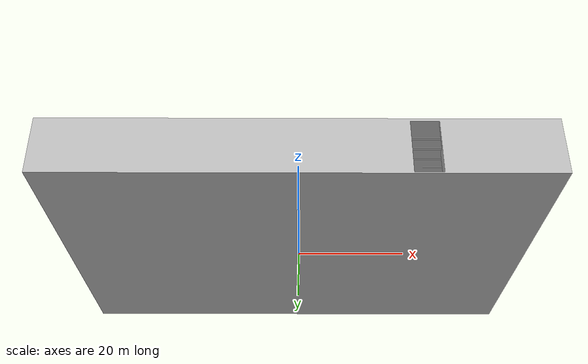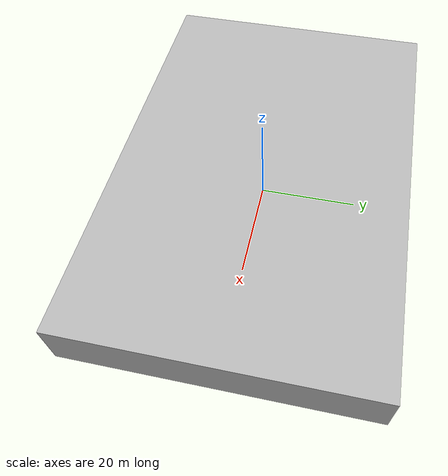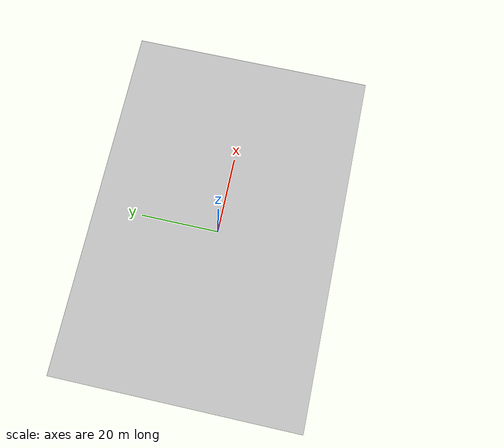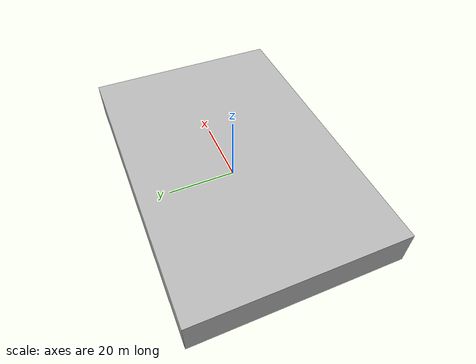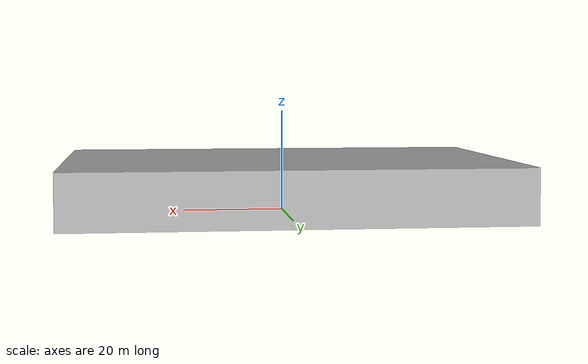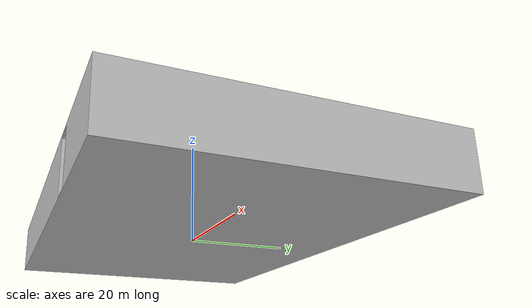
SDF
<?xml version="1.0" ?>
<sdf version="1.6">
  <model name="HEB College Station">
    <static>true</static>
    <link name="link">
      <collision name="collision">
        <geometry>
          <mesh>
            <uri>model://heb_college_station/meshes/grocery_store_v2.stl</uri>
          </mesh>
        </geometry>
      </collision>
      <visual name="visual">
        <geometry>
          <mesh>
            <uri>model://heb_college_station/meshes/grocery_store_v2.dae</uri>
          </mesh>
        </geometry>
      </visual>
    </link>
  </model>
</sdf>
